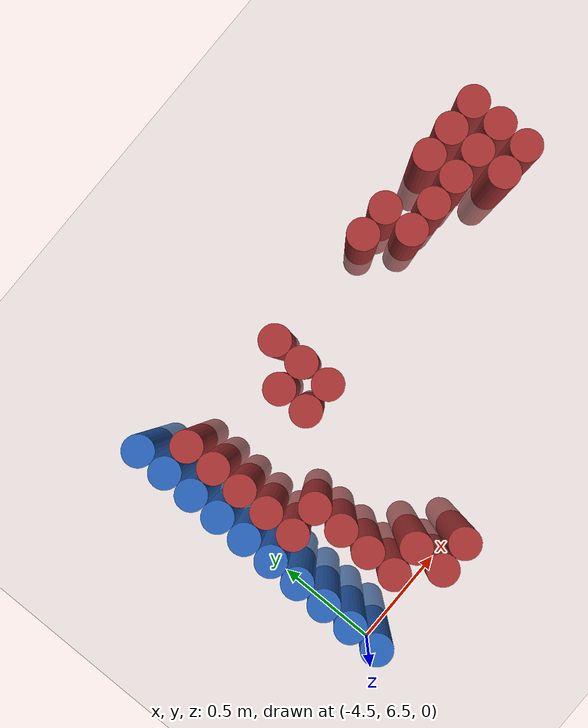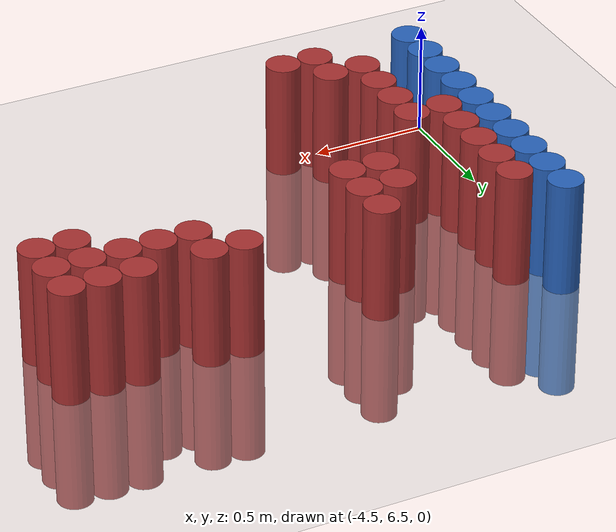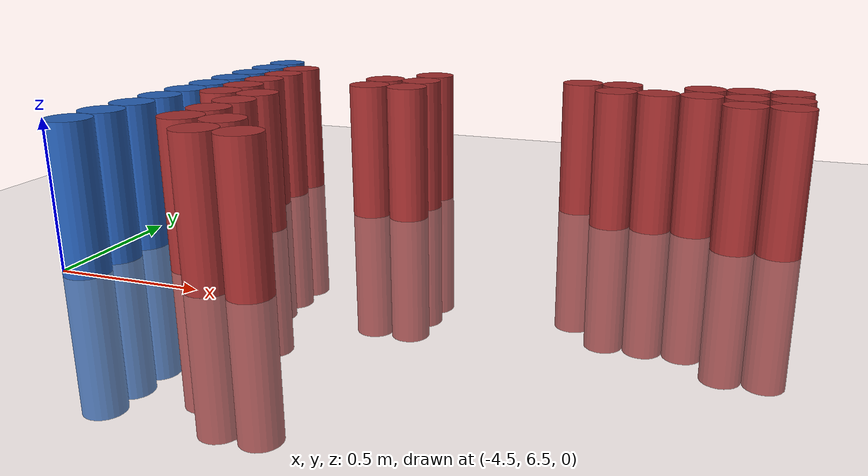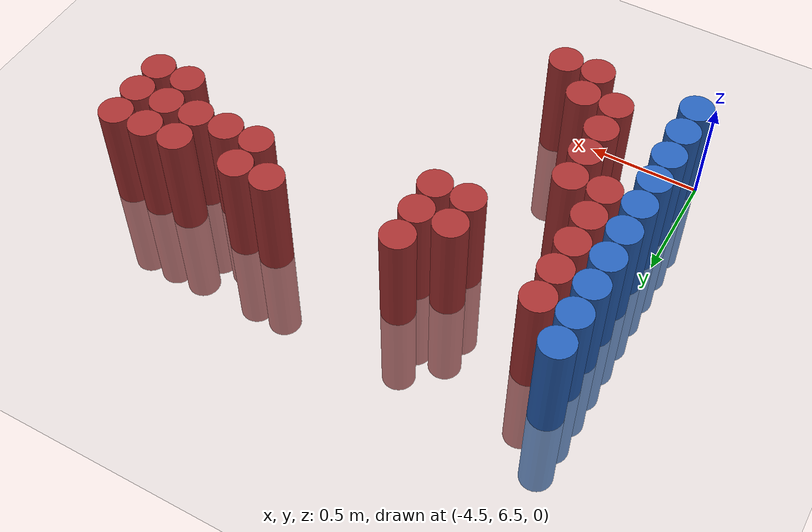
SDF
<sdf version="1.6">
 <world name="default">
  <model name="ground_plane">
   <static>1</static>
   <link name="link">
    <collision name="collision">
     <geometry><plane><normal>0 0 1</normal><size>100 100</size></plane></geometry>
     <surface><friction><ode><mu>100</mu><mu2>50</mu2></ode></friction></surface>
    </collision>
    <visual name="visual">
     <cast_shadows>0</cast_shadows>
     <geometry><plane><normal>0 0 1</normal><size>100 100</size></plane></geometry>
     <material>
      <script><uri>file://media/materials/scripts/gazebo.material</uri><name>Gazebo/Grey</name></script>
     </material>
    </visual>
   </link>
  </model>
  <model name="unit_cylinder_105">
   <static>1</static>
   <pose>-4.425000 6.525000 0.000000 0.000000 0.000000 0.000000</pose>
   <link name="link">
    <inertial>
     <mass>1</mass>
     <inertia><ixx>0.145833</ixx><ixy>0</ixy><ixz>0</ixz><iyy>0.145833</iyy><iyz>0</iyz><izz>0.125</izz></inertia>
    </inertial>
    <collision name="collision">
     <geometry><cylinder><radius>0.075000</radius><length>1</length></cylinder></geometry>
    </collision>
    <visual name="visual">
     <geometry><cylinder><radius>0.075000</radius><length>1</length></cylinder></geometry>
     <material>
      <ambient>0.152000 0.379000 0.720000 1</ambient>
      <diffuse>0.152000 0.379000 0.720000 1</diffuse>
     </material>
     <material>
      <script><name>Gazebo/Grey</name><uri>file://media/materials/scripts/gazebo.material</uri></script>
     </material>
    </visual>
    <sensor name="sensor_contact" type="contact"><contact><collision>collision</collision></contact></sensor>
   </link>
   <plugin filename="gz-sim-touchplugin-system" name="gz::sim::systems::TouchPlugin">
    <target>robot</target>
    <namespace>robot</namespace>
    <time>0.001</time>
    <enabled>true</enabled>
   </plugin>
  </model>
  <model name="unit_cylinder_106">
   <static>1</static>
   <pose>-4.425000 6.675000 0.000000 0.000000 0.000000 0.000000</pose>
   <link name="link">
    <inertial>
     <mass>1</mass>
     <inertia><ixx>0.145833</ixx><ixy>0</ixy><ixz>0</ixz><iyy>0.145833</iyy><iyz>0</iyz><izz>0.125</izz></inertia>
    </inertial>
    <collision name="collision">
     <geometry><cylinder><radius>0.075000</radius><length>1</length></cylinder></geometry>
    </collision>
    <visual name="visual">
     <geometry><cylinder><radius>0.075000</radius><length>1</length></cylinder></geometry>
     <material>
      <ambient>0.152000 0.379000 0.720000 1</ambient>
      <diffuse>0.152000 0.379000 0.720000 1</diffuse>
     </material>
     <material>
      <script><name>Gazebo/Grey</name><uri>file://media/materials/scripts/gazebo.material</uri></script>
     </material>
    </visual>
    <sensor name="sensor_contact" type="contact"><contact><collision>collision</collision></contact></sensor>
   </link>
   <plugin filename="gz-sim-touchplugin-system" name="gz::sim::systems::TouchPlugin">
    <target>robot</target>
    <namespace>robot</namespace>
    <time>0.001</time>
    <enabled>true</enabled>
   </plugin>
  </model>
  <model name="unit_cylinder_107">
   <static>1</static>
   <pose>-4.425000 6.825000 0.000000 0.000000 0.000000 0.000000</pose>
   <link name="link">
    <inertial>
     <mass>1</mass>
     <inertia><ixx>0.145833</ixx><ixy>0</ixy><ixz>0</ixz><iyy>0.145833</iyy><iyz>0</iyz><izz>0.125</izz></inertia>
    </inertial>
    <collision name="collision">
     <geometry><cylinder><radius>0.075000</radius><length>1</length></cylinder></geometry>
    </collision>
    <visual name="visual">
     <geometry><cylinder><radius>0.075000</radius><length>1</length></cylinder></geometry>
     <material>
      <ambient>0.152000 0.379000 0.720000 1</ambient>
      <diffuse>0.152000 0.379000 0.720000 1</diffuse>
     </material>
     <material>
      <script><name>Gazebo/Grey</name><uri>file://media/materials/scripts/gazebo.material</uri></script>
     </material>
    </visual>
    <sensor name="sensor_contact" type="contact"><contact><collision>collision</collision></contact></sensor>
   </link>
   <plugin filename="gz-sim-touchplugin-system" name="gz::sim::systems::TouchPlugin">
    <target>robot</target>
    <namespace>robot</namespace>
    <time>0.001</time>
    <enabled>true</enabled>
   </plugin>
  </model>
  <model name="unit_cylinder_108">
   <static>1</static>
   <pose>-4.425000 6.975000 0.000000 0.000000 0.000000 0.000000</pose>
   <link name="link">
    <inertial>
     <mass>1</mass>
     <inertia><ixx>0.145833</ixx><ixy>0</ixy><ixz>0</ixz><iyy>0.145833</iyy><iyz>0</iyz><izz>0.125</izz></inertia>
    </inertial>
    <collision name="collision">
     <geometry><cylinder><radius>0.075000</radius><length>1</length></cylinder></geometry>
    </collision>
    <visual name="visual">
     <geometry><cylinder><radius>0.075000</radius><length>1</length></cylinder></geometry>
     <material>
      <ambient>0.152000 0.379000 0.720000 1</ambient>
      <diffuse>0.152000 0.379000 0.720000 1</diffuse>
     </material>
     <material>
      <script><name>Gazebo/Grey</name><uri>file://media/materials/scripts/gazebo.material</uri></script>
     </material>
    </visual>
    <sensor name="sensor_contact" type="contact"><contact><collision>collision</collision></contact></sensor>
   </link>
   <plugin filename="gz-sim-touchplugin-system" name="gz::sim::systems::TouchPlugin">
    <target>robot</target>
    <namespace>robot</namespace>
    <time>0.001</time>
    <enabled>true</enabled>
   </plugin>
  </model>
  <model name="unit_cylinder_109">
   <static>1</static>
   <pose>-4.425000 7.125000 0.000000 0.000000 0.000000 0.000000</pose>
   <link name="link">
    <inertial>
     <mass>1</mass>
     <inertia><ixx>0.145833</ixx><ixy>0</ixy><ixz>0</ixz><iyy>0.145833</iyy><iyz>0</iyz><izz>0.125</izz></inertia>
    </inertial>
    <collision name="collision">
     <geometry><cylinder><radius>0.075000</radius><length>1</length></cylinder></geometry>
    </collision>
    <visual name="visual">
     <geometry><cylinder><radius>0.075000</radius><length>1</length></cylinder></geometry>
     <material>
      <ambient>0.152000 0.379000 0.720000 1</ambient>
      <diffuse>0.152000 0.379000 0.720000 1</diffuse>
     </material>
     <material>
      <script><name>Gazebo/Grey</name><uri>file://media/materials/scripts/gazebo.material</uri></script>
     </material>
    </visual>
    <sensor name="sensor_contact" type="contact"><contact><collision>collision</collision></contact></sensor>
   </link>
   <plugin filename="gz-sim-touchplugin-system" name="gz::sim::systems::TouchPlugin">
    <target>robot</target>
    <namespace>robot</namespace>
    <time>0.001</time>
    <enabled>true</enabled>
   </plugin>
  </model>
  <model name="unit_cylinder_110">
   <static>1</static>
   <pose>-4.425000 7.275000 0.000000 0.000000 0.000000 0.000000</pose>
   <link name="link">
    <inertial>
     <mass>1</mass>
     <inertia><ixx>0.145833</ixx><ixy>0</ixy><ixz>0</ixz><iyy>0.145833</iyy><iyz>0</iyz><izz>0.125</izz></inertia>
    </inertial>
    <collision name="collision">
     <geometry><cylinder><radius>0.075000</radius><length>1</length></cylinder></geometry>
    </collision>
    <visual name="visual">
     <geometry><cylinder><radius>0.075000</radius><length>1</length></cylinder></geometry>
     <material>
      <ambient>0.152000 0.379000 0.720000 1</ambient>
      <diffuse>0.152000 0.379000 0.720000 1</diffuse>
     </material>
     <material>
      <script><name>Gazebo/Grey</name><uri>file://media/materials/scripts/gazebo.material</uri></script>
     </material>
    </visual>
    <sensor name="sensor_contact" type="contact"><contact><collision>collision</collision></contact></sensor>
   </link>
   <plugin filename="gz-sim-touchplugin-system" name="gz::sim::systems::TouchPlugin">
    <target>robot</target>
    <namespace>robot</namespace>
    <time>0.001</time>
    <enabled>true</enabled>
   </plugin>
  </model>
  <model name="unit_cylinder_111">
   <static>1</static>
   <pose>-4.425000 7.425000 0.000000 0.000000 0.000000 0.000000</pose>
   <link name="link">
    <inertial>
     <mass>1</mass>
     <inertia><ixx>0.145833</ixx><ixy>0</ixy><ixz>0</ixz><iyy>0.145833</iyy><iyz>0</iyz><izz>0.125</izz></inertia>
    </inertial>
    <collision name="collision">
     <geometry><cylinder><radius>0.075000</radius><length>1</length></cylinder></geometry>
    </collision>
    <visual name="visual">
     <geometry><cylinder><radius>0.075000</radius><length>1</length></cylinder></geometry>
     <material>
      <ambient>0.152000 0.379000 0.720000 1</ambient>
      <diffuse>0.152000 0.379000 0.720000 1</diffuse>
     </material>
     <material>
      <script><name>Gazebo/Grey</name><uri>file://media/materials/scripts/gazebo.material</uri></script>
     </material>
    </visual>
    <sensor name="sensor_contact" type="contact"><contact><collision>collision</collision></contact></sensor>
   </link>
   <plugin filename="gz-sim-touchplugin-system" name="gz::sim::systems::TouchPlugin">
    <target>robot</target>
    <namespace>robot</namespace>
    <time>0.001</time>
    <enabled>true</enabled>
   </plugin>
  </model>
  <model name="unit_cylinder_112">
   <static>1</static>
   <pose>-4.425000 7.575000 0.000000 0.000000 0.000000 0.000000</pose>
   <link name="link">
    <inertial>
     <mass>1</mass>
     <inertia><ixx>0.145833</ixx><ixy>0</ixy><ixz>0</ixz><iyy>0.145833</iyy><iyz>0</iyz><izz>0.125</izz></inertia>
    </inertial>
    <collision name="collision">
     <geometry><cylinder><radius>0.075000</radius><length>1</length></cylinder></geometry>
    </collision>
    <visual name="visual">
     <geometry><cylinder><radius>0.075000</radius><length>1</length></cylinder></geometry>
     <material>
      <ambient>0.152000 0.379000 0.720000 1</ambient>
      <diffuse>0.152000 0.379000 0.720000 1</diffuse>
     </material>
     <material>
      <script><name>Gazebo/Grey</name><uri>file://media/materials/scripts/gazebo.material</uri></script>
     </material>
    </visual>
    <sensor name="sensor_contact" type="contact"><contact><collision>collision</collision></contact></sensor>
   </link>
   <plugin filename="gz-sim-touchplugin-system" name="gz::sim::systems::TouchPlugin">
    <target>robot</target>
    <namespace>robot</namespace>
    <time>0.001</time>
    <enabled>true</enabled>
   </plugin>
  </model>
  <model name="unit_cylinder_113">
   <static>1</static>
   <pose>-4.425000 7.725000 0.000000 0.000000 0.000000 0.000000</pose>
   <link name="link">
    <inertial>
     <mass>1</mass>
     <inertia><ixx>0.145833</ixx><ixy>0</ixy><ixz>0</ixz><iyy>0.145833</iyy><iyz>0</iyz><izz>0.125</izz></inertia>
    </inertial>
    <collision name="collision">
     <geometry><cylinder><radius>0.075000</radius><length>1</length></cylinder></geometry>
    </collision>
    <visual name="visual">
     <geometry><cylinder><radius>0.075000</radius><length>1</length></cylinder></geometry>
     <material>
      <ambient>0.152000 0.379000 0.720000 1</ambient>
      <diffuse>0.152000 0.379000 0.720000 1</diffuse>
     </material>
     <material>
      <script><name>Gazebo/Grey</name><uri>file://media/materials/scripts/gazebo.material</uri></script>
     </material>
    </visual>
    <sensor name="sensor_contact" type="contact"><contact><collision>collision</collision></contact></sensor>
   </link>
   <plugin filename="gz-sim-touchplugin-system" name="gz::sim::systems::TouchPlugin">
    <target>robot</target>
    <namespace>robot</namespace>
    <time>0.001</time>
    <enabled>true</enabled>
   </plugin>
  </model>
  <model name="unit_cylinder_114">
   <static>1</static>
   <pose>-4.425000 7.875000 0.000000 0.000000 0.000000 0.000000</pose>
   <link name="link">
    <inertial>
     <mass>1</mass>
     <inertia><ixx>0.145833</ixx><ixy>0</ixy><ixz>0</ixz><iyy>0.145833</iyy><iyz>0</iyz><izz>0.125</izz></inertia>
    </inertial>
    <collision name="collision">
     <geometry><cylinder><radius>0.075000</radius><length>1</length></cylinder></geometry>
    </collision>
    <visual name="visual">
     <geometry><cylinder><radius>0.075000</radius><length>1</length></cylinder></geometry>
     <material>
      <ambient>0.152000 0.379000 0.720000 1</ambient>
      <diffuse>0.152000 0.379000 0.720000 1</diffuse>
     </material>
     <material>
      <script><name>Gazebo/Grey</name><uri>file://media/materials/scripts/gazebo.material</uri></script>
     </material>
    </visual>
    <sensor name="sensor_contact" type="contact"><contact><collision>collision</collision></contact></sensor>
   </link>
   <plugin filename="gz-sim-touchplugin-system" name="gz::sim::systems::TouchPlugin">
    <target>robot</target>
    <namespace>robot</namespace>
    <time>0.001</time>
    <enabled>true</enabled>
   </plugin>
  </model>
  <model name="unit_cylinder_134">
   <static>1</static>
   <pose>-4.275000 7.125000 0.000000 0.000000 0.000000 0.000000</pose>
   <link name="link">
    <inertial>
     <mass>1</mass>
     <inertia><ixx>0.145833</ixx><ixy>0</ixy><ixz>0</ixz><iyy>0.145833</iyy><iyz>0</iyz><izz>0.125</izz></inertia>
    </inertial>
    <collision name="collision">
     <geometry><cylinder><radius>0.075000</radius><length>1</length></cylinder></geometry>
    </collision>
    <visual name="visual">
     <geometry><cylinder><radius>0.075000</radius><length>1</length></cylinder></geometry>
     <material>
      <ambient>0.648000 0.192000 0.192000 1</ambient>
      <diffuse>0.648000 0.192000 0.192000 1</diffuse>
     </material>
     <material>
      <script><name>Gazebo/Grey</name><uri>file://media/materials/scripts/gazebo.material</uri></script>
     </material>
    </visual>
    <sensor name="sensor_contact" type="contact"><contact><collision>collision</collision></contact></sensor>
   </link>
   <plugin filename="gz-sim-touchplugin-system" name="gz::sim::systems::TouchPlugin">
    <target>robot</target>
    <namespace>robot</namespace>
    <time>0.001</time>
    <enabled>true</enabled>
   </plugin>
  </model>
  <model name="unit_cylinder_135">
   <static>1</static>
   <pose>-4.275000 7.275000 0.000000 0.000000 0.000000 0.000000</pose>
   <link name="link">
    <inertial>
     <mass>1</mass>
     <inertia><ixx>0.145833</ixx><ixy>0</ixy><ixz>0</ixz><iyy>0.145833</iyy><iyz>0</iyz><izz>0.125</izz></inertia>
    </inertial>
    <collision name="collision">
     <geometry><cylinder><radius>0.075000</radius><length>1</length></cylinder></geometry>
    </collision>
    <visual name="visual">
     <geometry><cylinder><radius>0.075000</radius><length>1</length></cylinder></geometry>
     <material>
      <ambient>0.648000 0.192000 0.192000 1</ambient>
      <diffuse>0.648000 0.192000 0.192000 1</diffuse>
     </material>
     <material>
      <script><name>Gazebo/Grey</name><uri>file://media/materials/scripts/gazebo.material</uri></script>
     </material>
    </visual>
    <sensor name="sensor_contact" type="contact"><contact><collision>collision</collision></contact></sensor>
   </link>
   <plugin filename="gz-sim-touchplugin-system" name="gz::sim::systems::TouchPlugin">
    <target>robot</target>
    <namespace>robot</namespace>
    <time>0.001</time>
    <enabled>true</enabled>
   </plugin>
  </model>
  <model name="unit_cylinder_136">
   <static>1</static>
   <pose>-4.275000 7.425000 0.000000 0.000000 0.000000 0.000000</pose>
   <link name="link">
    <inertial>
     <mass>1</mass>
     <inertia><ixx>0.145833</ixx><ixy>0</ixy><ixz>0</ixz><iyy>0.145833</iyy><iyz>0</iyz><izz>0.125</izz></inertia>
    </inertial>
    <collision name="collision">
     <geometry><cylinder><radius>0.075000</radius><length>1</length></cylinder></geometry>
    </collision>
    <visual name="visual">
     <geometry><cylinder><radius>0.075000</radius><length>1</length></cylinder></geometry>
     <material>
      <ambient>0.648000 0.192000 0.192000 1</ambient>
      <diffuse>0.648000 0.192000 0.192000 1</diffuse>
     </material>
     <material>
      <script><name>Gazebo/Grey</name><uri>file://media/materials/scripts/gazebo.material</uri></script>
     </material>
    </visual>
    <sensor name="sensor_contact" type="contact"><contact><collision>collision</collision></contact></sensor>
   </link>
   <plugin filename="gz-sim-touchplugin-system" name="gz::sim::systems::TouchPlugin">
    <target>robot</target>
    <namespace>robot</namespace>
    <time>0.001</time>
    <enabled>true</enabled>
   </plugin>
  </model>
  <model name="unit_cylinder_137">
   <static>1</static>
   <pose>-4.275000 7.575000 0.000000 0.000000 0.000000 0.000000</pose>
   <link name="link">
    <inertial>
     <mass>1</mass>
     <inertia><ixx>0.145833</ixx><ixy>0</ixy><ixz>0</ixz><iyy>0.145833</iyy><iyz>0</iyz><izz>0.125</izz></inertia>
    </inertial>
    <collision name="collision">
     <geometry><cylinder><radius>0.075000</radius><length>1</length></cylinder></geometry>
    </collision>
    <visual name="visual">
     <geometry><cylinder><radius>0.075000</radius><length>1</length></cylinder></geometry>
     <material>
      <ambient>0.648000 0.192000 0.192000 1</ambient>
      <diffuse>0.648000 0.192000 0.192000 1</diffuse>
     </material>
     <material>
      <script><name>Gazebo/Grey</name><uri>file://media/materials/scripts/gazebo.material</uri></script>
     </material>
    </visual>
    <sensor name="sensor_contact" type="contact"><contact><collision>collision</collision></contact></sensor>
   </link>
   <plugin filename="gz-sim-touchplugin-system" name="gz::sim::systems::TouchPlugin">
    <target>robot</target>
    <namespace>robot</namespace>
    <time>0.001</time>
    <enabled>true</enabled>
   </plugin>
  </model>
  <model name="unit_cylinder_138">
   <static>1</static>
   <pose>-4.275000 7.725000 0.000000 0.000000 0.000000 0.000000</pose>
   <link name="link">
    <inertial>
     <mass>1</mass>
     <inertia><ixx>0.145833</ixx><ixy>0</ixy><ixz>0</ixz><iyy>0.145833</iyy><iyz>0</iyz><izz>0.125</izz></inertia>
    </inertial>
    <collision name="collision">
     <geometry><cylinder><radius>0.075000</radius><length>1</length></cylinder></geometry>
    </collision>
    <visual name="visual">
     <geometry><cylinder><radius>0.075000</radius><length>1</length></cylinder></geometry>
     <material>
      <ambient>0.648000 0.192000 0.192000 1</ambient>
      <diffuse>0.648000 0.192000 0.192000 1</diffuse>
     </material>
     <material>
      <script><name>Gazebo/Grey</name><uri>file://media/materials/scripts/gazebo.material</uri></script>
     </material>
    </visual>
    <sensor name="sensor_contact" type="contact"><contact><collision>collision</collision></contact></sensor>
   </link>
   <plugin filename="gz-sim-touchplugin-system" name="gz::sim::systems::TouchPlugin">
    <target>robot</target>
    <namespace>robot</namespace>
    <time>0.001</time>
    <enabled>true</enabled>
   </plugin>
  </model>
  <model name="unit_cylinder_146">
   <static>1</static>
   <pose>-4.125000 6.675000 0.000000 0.000000 0.000000 0.000000</pose>
   <link name="link">
    <inertial>
     <mass>1</mass>
     <inertia><ixx>0.145833</ixx><ixy>0</ixy><ixz>0</ixz><iyy>0.145833</iyy><iyz>0</iyz><izz>0.125</izz></inertia>
    </inertial>
    <collision name="collision">
     <geometry><cylinder><radius>0.075000</radius><length>1</length></cylinder></geometry>
    </collision>
    <visual name="visual">
     <geometry><cylinder><radius>0.075000</radius><length>1</length></cylinder></geometry>
     <material>
      <ambient>0.648000 0.192000 0.192000 1</ambient>
      <diffuse>0.648000 0.192000 0.192000 1</diffuse>
     </material>
     <material>
      <script><name>Gazebo/Grey</name><uri>file://media/materials/scripts/gazebo.material</uri></script>
     </material>
    </visual>
    <sensor name="sensor_contact" type="contact"><contact><collision>collision</collision></contact></sensor>
   </link>
   <plugin filename="gz-sim-touchplugin-system" name="gz::sim::systems::TouchPlugin">
    <target>robot</target>
    <namespace>robot</namespace>
    <time>0.001</time>
    <enabled>true</enabled>
   </plugin>
  </model>
  <model name="unit_cylinder_147">
   <static>1</static>
   <pose>-4.125000 6.825000 0.000000 0.000000 0.000000 0.000000</pose>
   <link name="link">
    <inertial>
     <mass>1</mass>
     <inertia><ixx>0.145833</ixx><ixy>0</ixy><ixz>0</ixz><iyy>0.145833</iyy><iyz>0</iyz><izz>0.125</izz></inertia>
    </inertial>
    <collision name="collision">
     <geometry><cylinder><radius>0.075000</radius><length>1</length></cylinder></geometry>
    </collision>
    <visual name="visual">
     <geometry><cylinder><radius>0.075000</radius><length>1</length></cylinder></geometry>
     <material>
      <ambient>0.648000 0.192000 0.192000 1</ambient>
      <diffuse>0.648000 0.192000 0.192000 1</diffuse>
     </material>
     <material>
      <script><name>Gazebo/Grey</name><uri>file://media/materials/scripts/gazebo.material</uri></script>
     </material>
    </visual>
    <sensor name="sensor_contact" type="contact"><contact><collision>collision</collision></contact></sensor>
   </link>
   <plugin filename="gz-sim-touchplugin-system" name="gz::sim::systems::TouchPlugin">
    <target>robot</target>
    <namespace>robot</namespace>
    <time>0.001</time>
    <enabled>true</enabled>
   </plugin>
  </model>
  <model name="unit_cylinder_148">
   <static>1</static>
   <pose>-4.125000 6.975000 0.000000 0.000000 0.000000 0.000000</pose>
   <link name="link">
    <inertial>
     <mass>1</mass>
     <inertia><ixx>0.145833</ixx><ixy>0</ixy><ixz>0</ixz><iyy>0.145833</iyy><iyz>0</iyz><izz>0.125</izz></inertia>
    </inertial>
    <collision name="collision">
     <geometry><cylinder><radius>0.075000</radius><length>1</length></cylinder></geometry>
    </collision>
    <visual name="visual">
     <geometry><cylinder><radius>0.075000</radius><length>1</length></cylinder></geometry>
     <material>
      <ambient>0.648000 0.192000 0.192000 1</ambient>
      <diffuse>0.648000 0.192000 0.192000 1</diffuse>
     </material>
     <material>
      <script><name>Gazebo/Grey</name><uri>file://media/materials/scripts/gazebo.material</uri></script>
     </material>
    </visual>
    <sensor name="sensor_contact" type="contact"><contact><collision>collision</collision></contact></sensor>
   </link>
   <plugin filename="gz-sim-touchplugin-system" name="gz::sim::systems::TouchPlugin">
    <target>robot</target>
    <namespace>robot</namespace>
    <time>0.001</time>
    <enabled>true</enabled>
   </plugin>
  </model>
  <model name="unit_cylinder_149">
   <static>1</static>
   <pose>-4.125000 7.125000 0.000000 0.000000 0.000000 0.000000</pose>
   <link name="link">
    <inertial>
     <mass>1</mass>
     <inertia><ixx>0.145833</ixx><ixy>0</ixy><ixz>0</ixz><iyy>0.145833</iyy><iyz>0</iyz><izz>0.125</izz></inertia>
    </inertial>
    <collision name="collision">
     <geometry><cylinder><radius>0.075000</radius><length>1</length></cylinder></geometry>
    </collision>
    <visual name="visual">
     <geometry><cylinder><radius>0.075000</radius><length>1</length></cylinder></geometry>
     <material>
      <ambient>0.648000 0.192000 0.192000 1</ambient>
      <diffuse>0.648000 0.192000 0.192000 1</diffuse>
     </material>
     <material>
      <script><name>Gazebo/Grey</name><uri>file://media/materials/scripts/gazebo.material</uri></script>
     </material>
    </visual>
    <sensor name="sensor_contact" type="contact"><contact><collision>collision</collision></contact></sensor>
   </link>
   <plugin filename="gz-sim-touchplugin-system" name="gz::sim::systems::TouchPlugin">
    <target>robot</target>
    <namespace>robot</namespace>
    <time>0.001</time>
    <enabled>true</enabled>
   </plugin>
  </model>
  <model name="unit_cylinder_153">
   <static>1</static>
   <pose>-3.975000 6.525000 0.000000 0.000000 0.000000 0.000000</pose>
   <link name="link">
    <inertial>
     <mass>1</mass>
     <inertia><ixx>0.145833</ixx><ixy>0</ixy><ixz>0</ixz><iyy>0.145833</iyy><iyz>0</iyz><izz>0.125</izz></inertia>
    </inertial>
    <collision name="collision">
     <geometry><cylinder><radius>0.075000</radius><length>1</length></cylinder></geometry>
    </collision>
    <visual name="visual">
     <geometry><cylinder><radius>0.075000</radius><length>1</length></cylinder></geometry>
     <material>
      <ambient>0.648000 0.192000 0.192000 1</ambient>
      <diffuse>0.648000 0.192000 0.192000 1</diffuse>
     </material>
     <material>
      <script><name>Gazebo/Grey</name><uri>file://media/materials/scripts/gazebo.material</uri></script>
     </material>
    </visual>
    <sensor name="sensor_contact" type="contact"><contact><collision>collision</collision></contact></sensor>
   </link>
   <plugin filename="gz-sim-touchplugin-system" name="gz::sim::systems::TouchPlugin">
    <target>robot</target>
    <namespace>robot</namespace>
    <time>0.001</time>
    <enabled>true</enabled>
   </plugin>
  </model>
  <model name="unit_cylinder_154">
   <static>1</static>
   <pose>-3.975000 6.675000 0.000000 0.000000 0.000000 0.000000</pose>
   <link name="link">
    <inertial>
     <mass>1</mass>
     <inertia><ixx>0.145833</ixx><ixy>0</ixy><ixz>0</ixz><iyy>0.145833</iyy><iyz>0</iyz><izz>0.125</izz></inertia>
    </inertial>
    <collision name="collision">
     <geometry><cylinder><radius>0.075000</radius><length>1</length></cylinder></geometry>
    </collision>
    <visual name="visual">
     <geometry><cylinder><radius>0.075000</radius><length>1</length></cylinder></geometry>
     <material>
      <ambient>0.648000 0.192000 0.192000 1</ambient>
      <diffuse>0.648000 0.192000 0.192000 1</diffuse>
     </material>
     <material>
      <script><name>Gazebo/Grey</name><uri>file://media/materials/scripts/gazebo.material</uri></script>
     </material>
    </visual>
    <sensor name="sensor_contact" type="contact"><contact><collision>collision</collision></contact></sensor>
   </link>
   <plugin filename="gz-sim-touchplugin-system" name="gz::sim::systems::TouchPlugin">
    <target>robot</target>
    <namespace>robot</namespace>
    <time>0.001</time>
    <enabled>true</enabled>
   </plugin>
  </model>
  <model name="unit_cylinder_160">
   <static>1</static>
   <pose>-3.825000 6.525000 0.000000 0.000000 0.000000 0.000000</pose>
   <link name="link">
    <inertial>
     <mass>1</mass>
     <inertia><ixx>0.145833</ixx><ixy>0</ixy><ixz>0</ixz><iyy>0.145833</iyy><iyz>0</iyz><izz>0.125</izz></inertia>
    </inertial>
    <collision name="collision">
     <geometry><cylinder><radius>0.075000</radius><length>1</length></cylinder></geometry>
    </collision>
    <visual name="visual">
     <geometry><cylinder><radius>0.075000</radius><length>1</length></cylinder></geometry>
     <material>
      <ambient>0.648000 0.192000 0.192000 1</ambient>
      <diffuse>0.648000 0.192000 0.192000 1</diffuse>
     </material>
     <material>
      <script><name>Gazebo/Grey</name><uri>file://media/materials/scripts/gazebo.material</uri></script>
     </material>
    </visual>
    <sensor name="sensor_contact" type="contact"><contact><collision>collision</collision></contact></sensor>
   </link>
   <plugin filename="gz-sim-touchplugin-system" name="gz::sim::systems::TouchPlugin">
    <target>robot</target>
    <namespace>robot</namespace>
    <time>0.001</time>
    <enabled>true</enabled>
   </plugin>
  </model>
  <model name="unit_cylinder_161">
   <static>1</static>
   <pose>-3.825000 7.425000 0.000000 0.000000 0.000000 0.000000</pose>
   <link name="link">
    <inertial>
     <mass>1</mass>
     <inertia><ixx>0.145833</ixx><ixy>0</ixy><ixz>0</ixz><iyy>0.145833</iyy><iyz>0</iyz><izz>0.125</izz></inertia>
    </inertial>
    <collision name="collision">
     <geometry><cylinder><radius>0.075000</radius><length>1</length></cylinder></geometry>
    </collision>
    <visual name="visual">
     <geometry><cylinder><radius>0.075000</radius><length>1</length></cylinder></geometry>
     <material>
      <ambient>0.648000 0.192000 0.192000 1</ambient>
      <diffuse>0.648000 0.192000 0.192000 1</diffuse>
     </material>
     <material>
      <script><name>Gazebo/Grey</name><uri>file://media/materials/scripts/gazebo.material</uri></script>
     </material>
    </visual>
    <sensor name="sensor_contact" type="contact"><contact><collision>collision</collision></contact></sensor>
   </link>
   <plugin filename="gz-sim-touchplugin-system" name="gz::sim::systems::TouchPlugin">
    <target>robot</target>
    <namespace>robot</namespace>
    <time>0.001</time>
    <enabled>true</enabled>
   </plugin>
  </model>
  <model name="unit_cylinder_162">
   <static>1</static>
   <pose>-3.825000 7.575000 0.000000 0.000000 0.000000 0.000000</pose>
   <link name="link">
    <inertial>
     <mass>1</mass>
     <inertia><ixx>0.145833</ixx><ixy>0</ixy><ixz>0</ixz><iyy>0.145833</iyy><iyz>0</iyz><izz>0.125</izz></inertia>
    </inertial>
    <collision name="collision">
     <geometry><cylinder><radius>0.075000</radius><length>1</length></cylinder></geometry>
    </collision>
    <visual name="visual">
     <geometry><cylinder><radius>0.075000</radius><length>1</length></cylinder></geometry>
     <material>
      <ambient>0.648000 0.192000 0.192000 1</ambient>
      <diffuse>0.648000 0.192000 0.192000 1</diffuse>
     </material>
     <material>
      <script><name>Gazebo/Grey</name><uri>file://media/materials/scripts/gazebo.material</uri></script>
     </material>
    </visual>
    <sensor name="sensor_contact" type="contact"><contact><collision>collision</collision></contact></sensor>
   </link>
   <plugin filename="gz-sim-touchplugin-system" name="gz::sim::systems::TouchPlugin">
    <target>robot</target>
    <namespace>robot</namespace>
    <time>0.001</time>
    <enabled>true</enabled>
   </plugin>
  </model>
  <model name="unit_cylinder_168">
   <static>1</static>
   <pose>-3.675000 7.425000 0.000000 0.000000 0.000000 0.000000</pose>
   <link name="link">
    <inertial>
     <mass>1</mass>
     <inertia><ixx>0.145833</ixx><ixy>0</ixy><ixz>0</ixz><iyy>0.145833</iyy><iyz>0</iyz><izz>0.125</izz></inertia>
    </inertial>
    <collision name="collision">
     <geometry><cylinder><radius>0.075000</radius><length>1</length></cylinder></geometry>
    </collision>
    <visual name="visual">
     <geometry><cylinder><radius>0.075000</radius><length>1</length></cylinder></geometry>
     <material>
      <ambient>0.648000 0.192000 0.192000 1</ambient>
      <diffuse>0.648000 0.192000 0.192000 1</diffuse>
     </material>
     <material>
      <script><name>Gazebo/Grey</name><uri>file://media/materials/scripts/gazebo.material</uri></script>
     </material>
    </visual>
    <sensor name="sensor_contact" type="contact"><contact><collision>collision</collision></contact></sensor>
   </link>
   <plugin filename="gz-sim-touchplugin-system" name="gz::sim::systems::TouchPlugin">
    <target>robot</target>
    <namespace>robot</namespace>
    <time>0.001</time>
    <enabled>true</enabled>
   </plugin>
  </model>
  <model name="unit_cylinder_169">
   <static>1</static>
   <pose>-3.675000 7.575000 0.000000 0.000000 0.000000 0.000000</pose>
   <link name="link">
    <inertial>
     <mass>1</mass>
     <inertia><ixx>0.145833</ixx><ixy>0</ixy><ixz>0</ixz><iyy>0.145833</iyy><iyz>0</iyz><izz>0.125</izz></inertia>
    </inertial>
    <collision name="collision">
     <geometry><cylinder><radius>0.075000</radius><length>1</length></cylinder></geometry>
    </collision>
    <visual name="visual">
     <geometry><cylinder><radius>0.075000</radius><length>1</length></cylinder></geometry>
     <material>
      <ambient>0.648000 0.192000 0.192000 1</ambient>
      <diffuse>0.648000 0.192000 0.192000 1</diffuse>
     </material>
     <material>
      <script><name>Gazebo/Grey</name><uri>file://media/materials/scripts/gazebo.material</uri></script>
     </material>
    </visual>
    <sensor name="sensor_contact" type="contact"><contact><collision>collision</collision></contact></sensor>
   </link>
   <plugin filename="gz-sim-touchplugin-system" name="gz::sim::systems::TouchPlugin">
    <target>robot</target>
    <namespace>robot</namespace>
    <time>0.001</time>
    <enabled>true</enabled>
   </plugin>
  </model>
  <model name="unit_cylinder_170">
   <static>1</static>
   <pose>-3.675000 7.725000 0.000000 0.000000 0.000000 0.000000</pose>
   <link name="link">
    <inertial>
     <mass>1</mass>
     <inertia><ixx>0.145833</ixx><ixy>0</ixy><ixz>0</ixz><iyy>0.145833</iyy><iyz>0</iyz><izz>0.125</izz></inertia>
    </inertial>
    <collision name="collision">
     <geometry><cylinder><radius>0.075000</radius><length>1</length></cylinder></geometry>
    </collision>
    <visual name="visual">
     <geometry><cylinder><radius>0.075000</radius><length>1</length></cylinder></geometry>
     <material>
      <ambient>0.648000 0.192000 0.192000 1</ambient>
      <diffuse>0.648000 0.192000 0.192000 1</diffuse>
     </material>
     <material>
      <script><name>Gazebo/Grey</name><uri>file://media/materials/scripts/gazebo.material</uri></script>
     </material>
    </visual>
    <sensor name="sensor_contact" type="contact"><contact><collision>collision</collision></contact></sensor>
   </link>
   <plugin filename="gz-sim-touchplugin-system" name="gz::sim::systems::TouchPlugin">
    <target>robot</target>
    <namespace>robot</namespace>
    <time>0.001</time>
    <enabled>true</enabled>
   </plugin>
  </model>
  <model name="unit_cylinder_172">
   <static>1</static>
   <pose>-3.075000 7.725000 0.000000 0.000000 0.000000 0.000000</pose>
   <link name="link">
    <inertial>
     <mass>1</mass>
     <inertia><ixx>0.145833</ixx><ixy>0</ixy><ixz>0</ixz><iyy>0.145833</iyy><iyz>0</iyz><izz>0.125</izz></inertia>
    </inertial>
    <collision name="collision">
     <geometry><cylinder><radius>0.075000</radius><length>1</length></cylinder></geometry>
    </collision>
    <visual name="visual">
     <geometry><cylinder><radius>0.075000</radius><length>1</length></cylinder></geometry>
     <material>
      <ambient>0.648000 0.192000 0.192000 1</ambient>
      <diffuse>0.648000 0.192000 0.192000 1</diffuse>
     </material>
     <material>
      <script><name>Gazebo/Grey</name><uri>file://media/materials/scripts/gazebo.material</uri></script>
     </material>
    </visual>
    <sensor name="sensor_contact" type="contact"><contact><collision>collision</collision></contact></sensor>
   </link>
   <plugin filename="gz-sim-touchplugin-system" name="gz::sim::systems::TouchPlugin">
    <target>robot</target>
    <namespace>robot</namespace>
    <time>0.001</time>
    <enabled>true</enabled>
   </plugin>
  </model>
  <model name="unit_cylinder_176">
   <static>1</static>
   <pose>-2.925000 7.575000 0.000000 0.000000 0.000000 0.000000</pose>
   <link name="link">
    <inertial>
     <mass>1</mass>
     <inertia><ixx>0.145833</ixx><ixy>0</ixy><ixz>0</ixz><iyy>0.145833</iyy><iyz>0</iyz><izz>0.125</izz></inertia>
    </inertial>
    <collision name="collision">
     <geometry><cylinder><radius>0.075000</radius><length>1</length></cylinder></geometry>
    </collision>
    <visual name="visual">
     <geometry><cylinder><radius>0.075000</radius><length>1</length></cylinder></geometry>
     <material>
      <ambient>0.648000 0.192000 0.192000 1</ambient>
      <diffuse>0.648000 0.192000 0.192000 1</diffuse>
     </material>
     <material>
      <script><name>Gazebo/Grey</name><uri>file://media/materials/scripts/gazebo.material</uri></script>
     </material>
    </visual>
    <sensor name="sensor_contact" type="contact"><contact><collision>collision</collision></contact></sensor>
   </link>
   <plugin filename="gz-sim-touchplugin-system" name="gz::sim::systems::TouchPlugin">
    <target>robot</target>
    <namespace>robot</namespace>
    <time>0.001</time>
    <enabled>true</enabled>
   </plugin>
  </model>
  <model name="unit_cylinder_177">
   <static>1</static>
   <pose>-2.925000 7.725000 0.000000 0.000000 0.000000 0.000000</pose>
   <link name="link">
    <inertial>
     <mass>1</mass>
     <inertia><ixx>0.145833</ixx><ixy>0</ixy><ixz>0</ixz><iyy>0.145833</iyy><iyz>0</iyz><izz>0.125</izz></inertia>
    </inertial>
    <collision name="collision">
     <geometry><cylinder><radius>0.075000</radius><length>1</length></cylinder></geometry>
    </collision>
    <visual name="visual">
     <geometry><cylinder><radius>0.075000</radius><length>1</length></cylinder></geometry>
     <material>
      <ambient>0.648000 0.192000 0.192000 1</ambient>
      <diffuse>0.648000 0.192000 0.192000 1</diffuse>
     </material>
     <material>
      <script><name>Gazebo/Grey</name><uri>file://media/materials/scripts/gazebo.material</uri></script>
     </material>
    </visual>
    <sensor name="sensor_contact" type="contact"><contact><collision>collision</collision></contact></sensor>
   </link>
   <plugin filename="gz-sim-touchplugin-system" name="gz::sim::systems::TouchPlugin">
    <target>robot</target>
    <namespace>robot</namespace>
    <time>0.001</time>
    <enabled>true</enabled>
   </plugin>
  </model>
  <model name="unit_cylinder_185">
   <static>1</static>
   <pose>-2.775000 7.575000 0.000000 0.000000 0.000000 0.000000</pose>
   <link name="link">
    <inertial>
     <mass>1</mass>
     <inertia><ixx>0.145833</ixx><ixy>0</ixy><ixz>0</ixz><iyy>0.145833</iyy><iyz>0</iyz><izz>0.125</izz></inertia>
    </inertial>
    <collision name="collision">
     <geometry><cylinder><radius>0.075000</radius><length>1</length></cylinder></geometry>
    </collision>
    <visual name="visual">
     <geometry><cylinder><radius>0.075000</radius><length>1</length></cylinder></geometry>
     <material>
      <ambient>0.648000 0.192000 0.192000 1</ambient>
      <diffuse>0.648000 0.192000 0.192000 1</diffuse>
     </material>
     <material>
      <script><name>Gazebo/Grey</name><uri>file://media/materials/scripts/gazebo.material</uri></script>
     </material>
    </visual>
    <sensor name="sensor_contact" type="contact"><contact><collision>collision</collision></contact></sensor>
   </link>
   <plugin filename="gz-sim-touchplugin-system" name="gz::sim::systems::TouchPlugin">
    <target>robot</target>
    <namespace>robot</namespace>
    <time>0.001</time>
    <enabled>true</enabled>
   </plugin>
  </model>
  <model name="unit_cylinder_188">
   <static>1</static>
   <pose>-2.625000 7.575000 0.000000 0.000000 0.000000 0.000000</pose>
   <link name="link">
    <inertial>
     <mass>1</mass>
     <inertia><ixx>0.145833</ixx><ixy>0</ixy><ixz>0</ixz><iyy>0.145833</iyy><iyz>0</iyz><izz>0.125</izz></inertia>
    </inertial>
    <collision name="collision">
     <geometry><cylinder><radius>0.075000</radius><length>1</length></cylinder></geometry>
    </collision>
    <visual name="visual">
     <geometry><cylinder><radius>0.075000</radius><length>1</length></cylinder></geometry>
     <material>
      <ambient>0.648000 0.192000 0.192000 1</ambient>
      <diffuse>0.648000 0.192000 0.192000 1</diffuse>
     </material>
     <material>
      <script><name>Gazebo/Grey</name><uri>file://media/materials/scripts/gazebo.material</uri></script>
     </material>
    </visual>
    <sensor name="sensor_contact" type="contact"><contact><collision>collision</collision></contact></sensor>
   </link>
   <plugin filename="gz-sim-touchplugin-system" name="gz::sim::systems::TouchPlugin">
    <target>robot</target>
    <namespace>robot</namespace>
    <time>0.001</time>
    <enabled>true</enabled>
   </plugin>
  </model>
  <model name="unit_cylinder_189">
   <static>1</static>
   <pose>-2.625000 7.725000 0.000000 0.000000 0.000000 0.000000</pose>
   <link name="link">
    <inertial>
     <mass>1</mass>
     <inertia><ixx>0.145833</ixx><ixy>0</ixy><ixz>0</ixz><iyy>0.145833</iyy><iyz>0</iyz><izz>0.125</izz></inertia>
    </inertial>
    <collision name="collision">
     <geometry><cylinder><radius>0.075000</radius><length>1</length></cylinder></geometry>
    </collision>
    <visual name="visual">
     <geometry><cylinder><radius>0.075000</radius><length>1</length></cylinder></geometry>
     <material>
      <ambient>0.648000 0.192000 0.192000 1</ambient>
      <diffuse>0.648000 0.192000 0.192000 1</diffuse>
     </material>
     <material>
      <script><name>Gazebo/Grey</name><uri>file://media/materials/scripts/gazebo.material</uri></script>
     </material>
    </visual>
    <sensor name="sensor_contact" type="contact"><contact><collision>collision</collision></contact></sensor>
   </link>
   <plugin filename="gz-sim-touchplugin-system" name="gz::sim::systems::TouchPlugin">
    <target>robot</target>
    <namespace>robot</namespace>
    <time>0.001</time>
    <enabled>true</enabled>
   </plugin>
  </model>
  <model name="unit_cylinder_194">
   <static>1</static>
   <pose>-2.475000 7.425000 0.000000 0.000000 0.000000 0.000000</pose>
   <link name="link">
    <inertial>
     <mass>1</mass>
     <inertia><ixx>0.145833</ixx><ixy>0</ixy><ixz>0</ixz><iyy>0.145833</iyy><iyz>0</iyz><izz>0.125</izz></inertia>
    </inertial>
    <collision name="collision">
     <geometry><cylinder><radius>0.075000</radius><length>1</length></cylinder></geometry>
    </collision>
    <visual name="visual">
     <geometry><cylinder><radius>0.075000</radius><length>1</length></cylinder></geometry>
     <material>
      <ambient>0.648000 0.192000 0.192000 1</ambient>
      <diffuse>0.648000 0.192000 0.192000 1</diffuse>
     </material>
     <material>
      <script><name>Gazebo/Grey</name><uri>file://media/materials/scripts/gazebo.material</uri></script>
     </material>
    </visual>
    <sensor name="sensor_contact" type="contact"><contact><collision>collision</collision></contact></sensor>
   </link>
   <plugin filename="gz-sim-touchplugin-system" name="gz::sim::systems::TouchPlugin">
    <target>robot</target>
    <namespace>robot</namespace>
    <time>0.001</time>
    <enabled>true</enabled>
   </plugin>
  </model>
  <model name="unit_cylinder_195">
   <static>1</static>
   <pose>-2.475000 7.575000 0.000000 0.000000 0.000000 0.000000</pose>
   <link name="link">
    <inertial>
     <mass>1</mass>
     <inertia><ixx>0.145833</ixx><ixy>0</ixy><ixz>0</ixz><iyy>0.145833</iyy><iyz>0</iyz><izz>0.125</izz></inertia>
    </inertial>
    <collision name="collision">
     <geometry><cylinder><radius>0.075000</radius><length>1</length></cylinder></geometry>
    </collision>
    <visual name="visual">
     <geometry><cylinder><radius>0.075000</radius><length>1</length></cylinder></geometry>
     <material>
      <ambient>0.648000 0.192000 0.192000 1</ambient>
      <diffuse>0.648000 0.192000 0.192000 1</diffuse>
     </material>
     <material>
      <script><name>Gazebo/Grey</name><uri>file://media/materials/scripts/gazebo.material</uri></script>
     </material>
    </visual>
    <sensor name="sensor_contact" type="contact"><contact><collision>collision</collision></contact></sensor>
   </link>
   <plugin filename="gz-sim-touchplugin-system" name="gz::sim::systems::TouchPlugin">
    <target>robot</target>
    <namespace>robot</namespace>
    <time>0.001</time>
    <enabled>true</enabled>
   </plugin>
  </model>
  <model name="unit_cylinder_196">
   <static>1</static>
   <pose>-2.475000 7.725000 0.000000 0.000000 0.000000 0.000000</pose>
   <link name="link">
    <inertial>
     <mass>1</mass>
     <inertia><ixx>0.145833</ixx><ixy>0</ixy><ixz>0</ixz><iyy>0.145833</iyy><iyz>0</iyz><izz>0.125</izz></inertia>
    </inertial>
    <collision name="collision">
     <geometry><cylinder><radius>0.075000</radius><length>1</length></cylinder></geometry>
    </collision>
    <visual name="visual">
     <geometry><cylinder><radius>0.075000</radius><length>1</length></cylinder></geometry>
     <material>
      <ambient>0.648000 0.192000 0.192000 1</ambient>
      <diffuse>0.648000 0.192000 0.192000 1</diffuse>
     </material>
     <material>
      <script><name>Gazebo/Grey</name><uri>file://media/materials/scripts/gazebo.material</uri></script>
     </material>
    </visual>
    <sensor name="sensor_contact" type="contact"><contact><collision>collision</collision></contact></sensor>
   </link>
   <plugin filename="gz-sim-touchplugin-system" name="gz::sim::systems::TouchPlugin">
    <target>robot</target>
    <namespace>robot</namespace>
    <time>0.001</time>
    <enabled>true</enabled>
   </plugin>
  </model>
  <model name="unit_cylinder_200">
   <static>1</static>
   <pose>-2.325000 7.425000 0.000000 0.000000 0.000000 0.000000</pose>
   <link name="link">
    <inertial>
     <mass>1</mass>
     <inertia><ixx>0.145833</ixx><ixy>0</ixy><ixz>0</ixz><iyy>0.145833</iyy><iyz>0</iyz><izz>0.125</izz></inertia>
    </inertial>
    <collision name="collision">
     <geometry><cylinder><radius>0.075000</radius><length>1</length></cylinder></geometry>
    </collision>
    <visual name="visual">
     <geometry><cylinder><radius>0.075000</radius><length>1</length></cylinder></geometry>
     <material>
      <ambient>0.648000 0.192000 0.192000 1</ambient>
      <diffuse>0.648000 0.192000 0.192000 1</diffuse>
     </material>
     <material>
      <script><name>Gazebo/Grey</name><uri>file://media/materials/scripts/gazebo.material</uri></script>
     </material>
    </visual>
    <sensor name="sensor_contact" type="contact"><contact><collision>collision</collision></contact></sensor>
   </link>
   <plugin filename="gz-sim-touchplugin-system" name="gz::sim::systems::TouchPlugin">
    <target>robot</target>
    <namespace>robot</namespace>
    <time>0.001</time>
    <enabled>true</enabled>
   </plugin>
  </model>
  <model name="unit_cylinder_201">
   <static>1</static>
   <pose>-2.325000 7.575000 0.000000 0.000000 0.000000 0.000000</pose>
   <link name="link">
    <inertial>
     <mass>1</mass>
     <inertia><ixx>0.145833</ixx><ixy>0</ixy><ixz>0</ixz><iyy>0.145833</iyy><iyz>0</iyz><izz>0.125</izz></inertia>
    </inertial>
    <collision name="collision">
     <geometry><cylinder><radius>0.075000</radius><length>1</length></cylinder></geometry>
    </collision>
    <visual name="visual">
     <geometry><cylinder><radius>0.075000</radius><length>1</length></cylinder></geometry>
     <material>
      <ambient>0.648000 0.192000 0.192000 1</ambient>
      <diffuse>0.648000 0.192000 0.192000 1</diffuse>
     </material>
     <material>
      <script><name>Gazebo/Grey</name><uri>file://media/materials/scripts/gazebo.material</uri></script>
     </material>
    </visual>
    <sensor name="sensor_contact" type="contact"><contact><collision>collision</collision></contact></sensor>
   </link>
   <plugin filename="gz-sim-touchplugin-system" name="gz::sim::systems::TouchPlugin">
    <target>robot</target>
    <namespace>robot</namespace>
    <time>0.001</time>
    <enabled>true</enabled>
   </plugin>
  </model>
  <model name="unit_cylinder_202">
   <static>1</static>
   <pose>-2.325000 7.725000 0.000000 0.000000 0.000000 0.000000</pose>
   <link name="link">
    <inertial>
     <mass>1</mass>
     <inertia><ixx>0.145833</ixx><ixy>0</ixy><ixz>0</ixz><iyy>0.145833</iyy><iyz>0</iyz><izz>0.125</izz></inertia>
    </inertial>
    <collision name="collision">
     <geometry><cylinder><radius>0.075000</radius><length>1</length></cylinder></geometry>
    </collision>
    <visual name="visual">
     <geometry><cylinder><radius>0.075000</radius><length>1</length></cylinder></geometry>
     <material>
      <ambient>0.648000 0.192000 0.192000 1</ambient>
      <diffuse>0.648000 0.192000 0.192000 1</diffuse>
     </material>
     <material>
      <script><name>Gazebo/Grey</name><uri>file://media/materials/scripts/gazebo.material</uri></script>
     </material>
    </visual>
    <sensor name="sensor_contact" type="contact"><contact><collision>collision</collision></contact></sensor>
   </link>
   <plugin filename="gz-sim-touchplugin-system" name="gz::sim::systems::TouchPlugin">
    <target>robot</target>
    <namespace>robot</namespace>
    <time>0.001</time>
    <enabled>true</enabled>
   </plugin>
  </model>
 </world>
</sdf>
